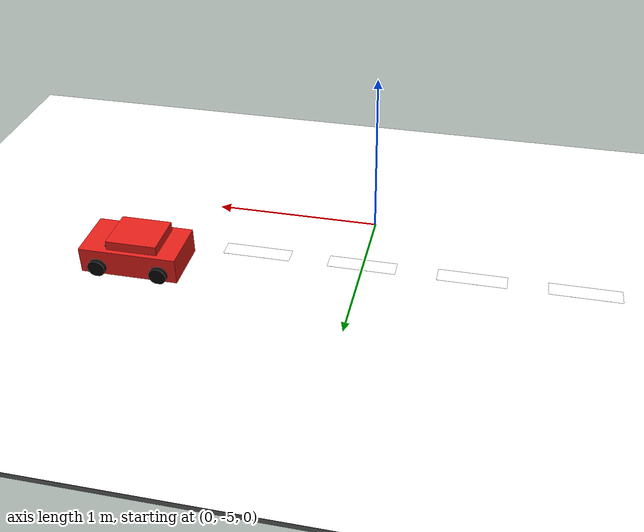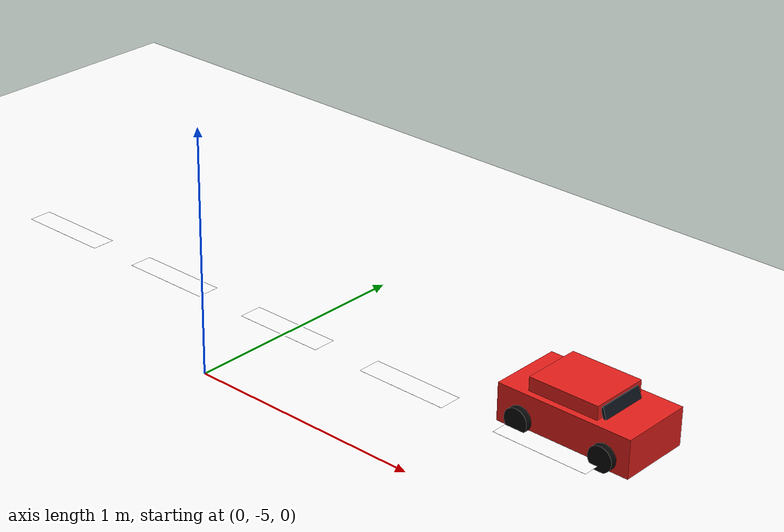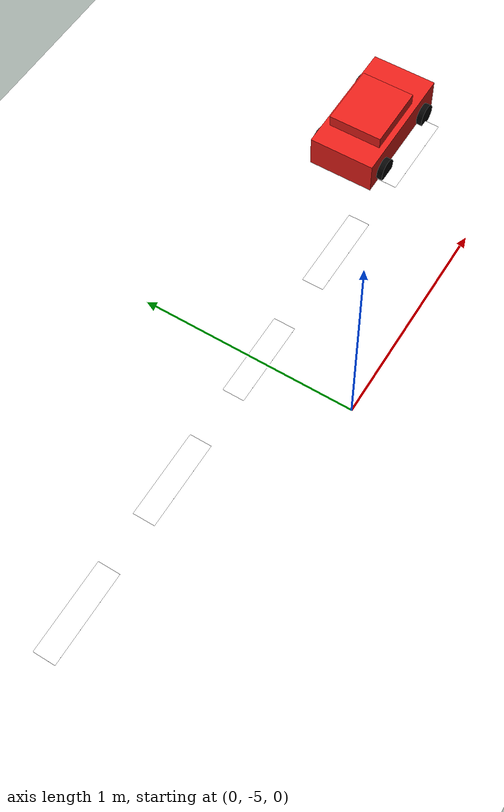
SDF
<sdf version="1.7">
 <world name="kookmin_xycar_track">
  <model name="kookmin_track">
   <static>true</static>
   <link name="floor_base">
    <pose>0 0 -0.015 0 0 0</pose>
    <collision name="collision">
     <geometry><box><size>28.3000 18.6000 0.0300</size></box></geometry>
     <surface>
      <friction>
       <ode><mu>50</mu><mu2>50</mu2></ode>
       <bullet><friction>1</friction><rolling_friction>0.1</rolling_friction></bullet>
      </friction>
     </surface>
    </collision>
    <visual name="visual">
     <geometry><box><size>28.3000 18.6000 0.0300</size></box></geometry>
     <material><ambient>0.3608 0.3686 0.3569 1</ambient><diffuse>0.3608 0.3686 0.3569 1</diffuse></material>
    </visual>
   </link>
   <link name="track_texture_surface">
    <pose>0 0 0.006 0 0 0</pose>
    <visual name="visual">
     <geometry><plane><normal>0 0 1</normal><size>28.3000 18.6000</size></plane></geometry>
     <material>
      <ambient>1 1 1 1</ambient>
      <diffuse>1 1 1 1</diffuse>
      <pbr>
       <metal>
        <albedo_map>file://media/materials/textures/kookmin_cad_v4_road.png</albedo_map>
        <roughness>1</roughness>
        <metalness>0</metalness>
       </metal>
      </pbr>
     </material>
    </visual>
   </link>
  </model>
  <model name="yellow_centerline_dash_054">
   <static>true</static>
   <pose>-1.2750 -4.5600 0.0206 0 0 0</pose>
   <link name="yellow_centerline_dash_054_surface">
    <visual name="visual">
     <cast_shadows>false</cast_shadows>
     <geometry><plane><normal>0 0 1</normal><size>0.4100 0.1000</size></plane></geometry>
     <material>
      <ambient>1 1 1 1</ambient>
      <diffuse>1 1 1 1</diffuse>
      <emissive>1.0000 0.7686 0.0471 1</emissive>
      <pbr>
       <metal>
        <albedo_map>file://media/materials/textures/kookmin_yellow_centerline_cad_v4_dash_054.png</albedo_map>
        <roughness>1</roughness>
        <metalness>0</metalness>
       </metal>
      </pbr>
     </material>
    </visual>
   </link>
  </model>
  <model name="yellow_centerline_dash_055">
   <static>true</static>
   <pose>-0.6400 -4.5600 0.0207 0 0 0</pose>
   <link name="yellow_centerline_dash_055_surface">
    <visual name="visual">
     <cast_shadows>false</cast_shadows>
     <geometry><plane><normal>0 0 1</normal><size>0.4000 0.1000</size></plane></geometry>
     <material>
      <ambient>1 1 1 1</ambient>
      <diffuse>1 1 1 1</diffuse>
      <emissive>1.0000 0.7686 0.0471 1</emissive>
      <pbr>
       <metal>
        <albedo_map>file://media/materials/textures/kookmin_yellow_centerline_cad_v4_dash_055.png</albedo_map>
        <roughness>1</roughness>
        <metalness>0</metalness>
       </metal>
      </pbr>
     </material>
    </visual>
   </link>
  </model>
  <model name="yellow_centerline_dash_056">
   <static>true</static>
   <pose>0.0000 -4.5600 0.0207 0 0 0</pose>
   <link name="yellow_centerline_dash_056_surface">
    <visual name="visual">
     <cast_shadows>false</cast_shadows>
     <geometry><plane><normal>0 0 1</normal><size>0.4000 0.1000</size></plane></geometry>
     <material>
      <ambient>1 1 1 1</ambient>
      <diffuse>1 1 1 1</diffuse>
      <emissive>1.0000 0.7686 0.0471 1</emissive>
      <pbr>
       <metal>
        <albedo_map>file://media/materials/textures/kookmin_yellow_centerline_cad_v4_dash_056.png</albedo_map>
        <roughness>1</roughness>
        <metalness>0</metalness>
       </metal>
      </pbr>
     </material>
    </visual>
   </link>
  </model>
  <model name="yellow_centerline_dash_057">
   <static>true</static>
   <pose>0.6300 -4.5600 0.0208 0 0 0</pose>
   <link name="yellow_centerline_dash_057_surface">
    <visual name="visual">
     <cast_shadows>false</cast_shadows>
     <geometry><plane><normal>0 0 1</normal><size>0.4000 0.1000</size></plane></geometry>
     <material>
      <ambient>1 1 1 1</ambient>
      <diffuse>1 1 1 1</diffuse>
      <emissive>1.0000 0.7686 0.0471 1</emissive>
      <pbr>
       <metal>
        <albedo_map>file://media/materials/textures/kookmin_yellow_centerline_cad_v4_dash_057.png</albedo_map>
        <roughness>1</roughness>
        <metalness>0</metalness>
       </metal>
      </pbr>
     </material>
    </visual>
   </link>
  </model>
  <model name="yellow_centerline_dash_058">
   <static>true</static>
   <pose>1.2750 -4.5600 0.0209 0 0 0</pose>
   <link name="yellow_centerline_dash_058_surface">
    <visual name="visual">
     <cast_shadows>false</cast_shadows>
     <geometry><plane><normal>0 0 1</normal><size>0.4100 0.1000</size></plane></geometry>
     <material>
      <ambient>1 1 1 1</ambient>
      <diffuse>1 1 1 1</diffuse>
      <emissive>1.0000 0.7686 0.0471 1</emissive>
      <pbr>
       <metal>
        <albedo_map>file://media/materials/textures/kookmin_yellow_centerline_cad_v4_dash_058.png</albedo_map>
        <roughness>1</roughness>
        <metalness>0</metalness>
       </metal>
      </pbr>
     </material>
    </visual>
   </link>
  </model>
  <model name="mission_fixed_vehicle">
   <static>true</static>
   <pose>1.300000 -4.360000 0.080000 0.000000 0.000000 0.000000</pose>
   <link name="body">
    <collision name="body_collision"><geometry><box><size>0.5800 0.3100 0.1600</size></box></geometry></collision>
    <visual name="lower_body">
     <geometry><box><size>0.5800 0.3100 0.1600</size></box></geometry>
     <material>
      <ambient>0.9000 0.1200 0.1000 1.0000</ambient>
      <diffuse>0.9000 0.1200 0.1000 1.0000</diffuse>
      <emissive>0 0 0 1</emissive>
      <pbr><metal><roughness>0.72</roughness><metalness>0.0</metalness></metal></pbr>
     </material>
    </visual>
    <visual name="cabin">
     <pose>-0.0232 0 0.0928 0 0 0</pose>
     <geometry><box><size>0.3016 0.2542 0.0880</size></box></geometry>
     <material>
      <ambient>0.9000 0.1200 0.1000 1.0000</ambient>
      <diffuse>0.9000 0.1200 0.1000 1.0000</diffuse>
      <emissive>0 0 0 1</emissive>
      <pbr><metal><roughness>0.72</roughness><metalness>0.0</metalness></metal></pbr>
     </material>
    </visual>
    <visual name="front_window">
     <pose>0.1363 0 0.0992 0 -0.35 0</pose>
     <geometry><box><size>0.0120 0.2077 0.0544</size></box></geometry>
     <material>
      <ambient>0.0400 0.0700 0.1000 1.0000</ambient>
      <diffuse>0.0400 0.0700 0.1000 1.0000</diffuse>
      <emissive>0.0100 0.0200 0.0300 1.0000</emissive>
      <pbr><metal><roughness>0.72</roughness><metalness>0.0</metalness></metal></pbr>
     </material>
    </visual>
    <visual name="wheel_1">
     <pose>0.1856 0.1643 -0.0280 1.570796 0 0</pose>
     <geometry><cylinder><radius>0.0520</radius><length>0.0350</length></cylinder></geometry>
     <material>
      <ambient>0.0250 0.0250 0.0250 1.0000</ambient>
      <diffuse>0.0250 0.0250 0.0250 1.0000</diffuse>
      <emissive>0 0 0 1</emissive>
      <pbr><metal><roughness>0.72</roughness><metalness>0.0</metalness></metal></pbr>
     </material>
    </visual>
    <visual name="wheel_2">
     <pose>0.1856 -0.1643 -0.0280 1.570796 0 0</pose>
     <geometry><cylinder><radius>0.0520</radius><length>0.0350</length></cylinder></geometry>
     <material>
      <ambient>0.0250 0.0250 0.0250 1.0000</ambient>
      <diffuse>0.0250 0.0250 0.0250 1.0000</diffuse>
      <emissive>0 0 0 1</emissive>
      <pbr><metal><roughness>0.72</roughness><metalness>0.0</metalness></metal></pbr>
     </material>
    </visual>
    <visual name="wheel_3">
     <pose>-0.1856 0.1643 -0.0280 1.570796 0 0</pose>
     <geometry><cylinder><radius>0.0520</radius><length>0.0350</length></cylinder></geometry>
     <material>
      <ambient>0.0250 0.0250 0.0250 1.0000</ambient>
      <diffuse>0.0250 0.0250 0.0250 1.0000</diffuse>
      <emissive>0 0 0 1</emissive>
      <pbr><metal><roughness>0.72</roughness><metalness>0.0</metalness></metal></pbr>
     </material>
    </visual>
    <visual name="wheel_4">
     <pose>-0.1856 -0.1643 -0.0280 1.570796 0 0</pose>
     <geometry><cylinder><radius>0.0520</radius><length>0.0350</length></cylinder></geometry>
     <material>
      <ambient>0.0250 0.0250 0.0250 1.0000</ambient>
      <diffuse>0.0250 0.0250 0.0250 1.0000</diffuse>
      <emissive>0 0 0 1</emissive>
      <pbr><metal><roughness>0.72</roughness><metalness>0.0</metalness></metal></pbr>
     </material>
    </visual>
   </link>
  </model>
 </world>
</sdf>
